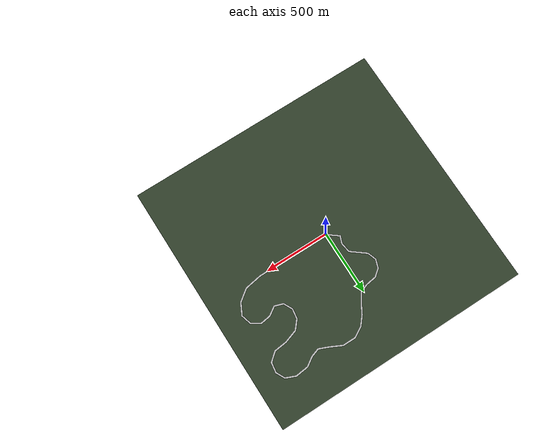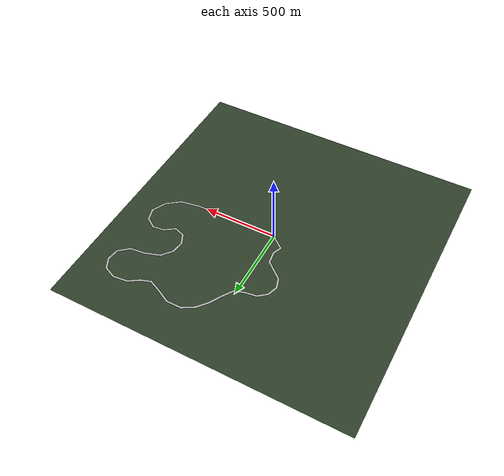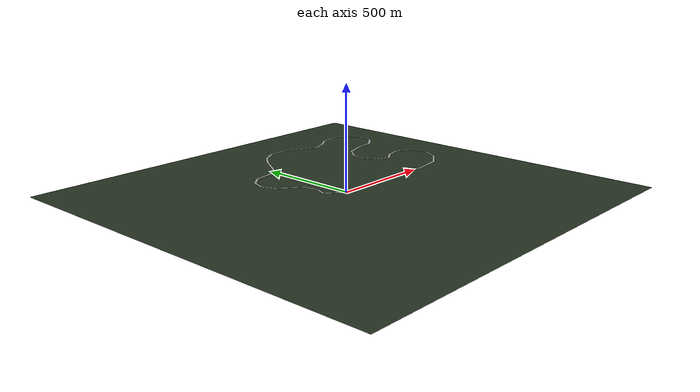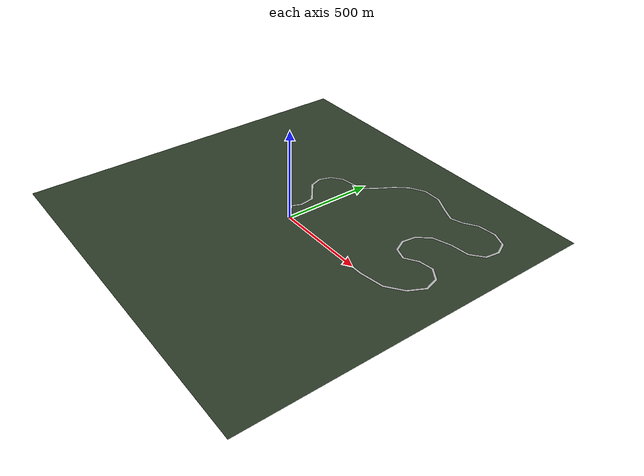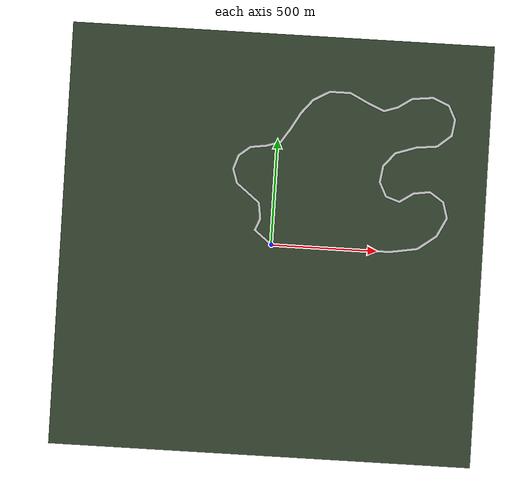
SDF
<?xml version="1.0" ?>
<sdf version="1.9">
  <world name="silesia_ring">
    <!-- Approximate track ribbon scaled to 3,636 m centreline and 12 m nominal width; layout is not survey-grade. -->
    <physics name="1ms" type="ode">
      <max_step_size>0.001</max_step_size>
      <real_time_factor>1</real_time_factor>
      <real_time_update_rate>1000</real_time_update_rate>
    </physics>

    <spherical_coordinates>
      <surface_model>EARTH_WGS84</surface_model>
      <latitude_deg>50.3568</latitude_deg>
      <longitude_deg>18.4027</longitude_deg>
      <elevation>270.0</elevation>
      <heading_deg>0</heading_deg>
    </spherical_coordinates>

    <plugin filename="gz-sim-physics-system"
            name="gz::sim::systems::Physics"/>
    <plugin filename="gz-sim-user-commands-system"
            name="gz::sim::systems::UserCommands"/>
    <plugin filename="gz-sim-scene-broadcaster-system"
            name="gz::sim::systems::SceneBroadcaster"/>
    <plugin filename="gz-sim-sensors-system"
            name="gz::sim::systems::Sensors">
      <render_engine>ogre2</render_engine>
    </plugin>
    <plugin filename="gz-sim-imu-system"
            name="gz::sim::systems::Imu"/>
    <plugin filename="gz-sim-navsat-system"
            name="gz::sim::systems::NavSat"/>

    <scene>
      <ambient>0.5 0.5 0.5 1</ambient>
      <background>0.65 0.65 0.65 1</background>
      <shadows>false</shadows>
    </scene>

    <light name="sun" type="directional">
      <pose>0 0 500 0 0 0</pose>
      <direction>-0.3 -0.4 -1</direction>
      <diffuse>1 1 1 1</diffuse>
      <specular>0.2 0.2 0.2 1</specular>
    </light>

    <!-- Flat surrounding terrain, 1 cm below the track ribbon. The track itself has matching mesh collision. -->
    <model name="silesia_ring_terrain">
      <static>true</static>
      <pose>0 0 -0.06 0 0 0</pose>
      <link name="ground">
        <collision name="ground_collision">
          <geometry><box><size>2000 2000 0.1</size></box></geometry>
        </collision>
        <visual name="ground_visual">
          <geometry><box><size>2000 2000 0.1</size></box></geometry>
          <material><ambient>0.18 0.24 0.16 1</ambient><diffuse>0.18 0.24 0.16 1</diffuse></material>
        </visual>
      </link>
    </model>

    <include>
      <uri>model://silesia_ring</uri>
      <name>silesia_ring</name>
      <pose>0 0 0 0 0 0</pose>
    </include>

    <!--
      Cone obstacles (orange, r=0.15 m, h=0.5 m) placed along a
      straight section for LiDAR avoidance testing.
      Box obstacle simulates a stopped vehicle or barrier.
    -->
    <model name="cone_1">
      <static>true</static>
      <pose>10 2.0 0.25 0 0 0</pose>
      <link name="link">
        <collision name="col">
          <geometry><cylinder><radius>0.15</radius><length>0.5</length></cylinder></geometry>
        </collision>
        <visual name="vis">
          <geometry><cylinder><radius>0.15</radius><length>0.5</length></cylinder></geometry>
          <material><ambient>1 0.4 0 1</ambient><diffuse>1 0.4 0 1</diffuse></material>
        </visual>
      </link>
    </model>

    <model name="cone_2">
      <static>true</static>
      <pose>15 -1.5 0.25 0 0 0</pose>
      <link name="link">
        <collision name="col">
          <geometry><cylinder><radius>0.15</radius><length>0.5</length></cylinder></geometry>
        </collision>
        <visual name="vis">
          <geometry><cylinder><radius>0.15</radius><length>0.5</length></cylinder></geometry>
          <material><ambient>1 0.4 0 1</ambient><diffuse>1 0.4 0 1</diffuse></material>
        </visual>
      </link>
    </model>

    <model name="cone_3">
      <static>true</static>
      <pose>25 3.0 0.25 0 0 0</pose>
      <link name="link">
        <collision name="col">
          <geometry><cylinder><radius>0.15</radius><length>0.5</length></cylinder></geometry>
        </collision>
        <visual name="vis">
          <geometry><cylinder><radius>0.15</radius><length>0.5</length></cylinder></geometry>
          <material><ambient>1 0.4 0 1</ambient><diffuse>1 0.4 0 1</diffuse></material>
        </visual>
      </link>
    </model>

    <model name="cone_4">
      <static>true</static>
      <pose>30 -2.5 0.25 0 0 0</pose>
      <link name="link">
        <collision name="col">
          <geometry><cylinder><radius>0.15</radius><length>0.5</length></cylinder></geometry>
        </collision>
        <visual name="vis">
          <geometry><cylinder><radius>0.15</radius><length>0.5</length></cylinder></geometry>
          <material><ambient>1 0.4 0 1</ambient><diffuse>1 0.4 0 1</diffuse></material>
        </visual>
      </link>
    </model>

    <!-- Box obstacle: simulates a stopped car or barrier -->
    <model name="box_obstacle_1">
      <static>true</static>
      <pose>20 0.5 0.5 0 0 0</pose>
      <link name="link">
        <collision name="col">
          <geometry><box><size>0.6 0.6 1.0</size></box></geometry>
        </collision>
        <visual name="vis">
          <geometry><box><size>0.6 0.6 1.0</size></box></geometry>
          <material><ambient>0.8 0.1 0.1 1</ambient><diffuse>0.8 0.1 0.1 1</diffuse></material>
        </visual>
      </link>
    </model>

  </world>
</sdf>

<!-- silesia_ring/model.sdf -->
<sdf version="1.9">
  <model name="silesia_ring">
    <static>true</static>
    <link name="track">
      <!-- Simplified, scaled track ribbon: 3,636 m centreline and 12 m nominal width.
           This is not a survey-grade reconstruction; replace with surveyed/CAD geometry when available. -->
      <visual name="track_surface">
        <pose>0 0 0 0 0 0</pose>
        <geometry>
          <mesh>
            <uri>model://silesia_ring/meshes/silesia_ring.obj</uri>
          </mesh>
        </geometry>
      </visual>
      <collision name="track_surface_collision">
        <pose>0 0 0 0 0 0</pose>
        <geometry>
          <mesh>
            <uri>model://silesia_ring/meshes/silesia_ring.obj</uri>
          </mesh>
        </geometry>
        <surface>
          <friction>
            <ode><mu>1.0</mu><mu2>1.0</mu2></ode>
          </friction>
        </surface>
      </collision>
    </link>
  </model>
</sdf>
